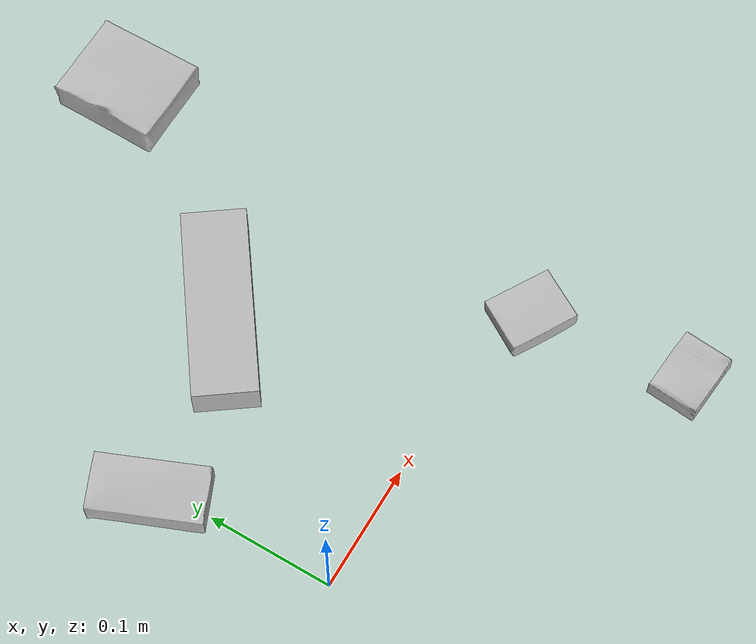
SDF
<sdf version="1.4">
  <world name="default">
    <light name="light1" type="point">
      <pose>0 0 1 0 0 0</pose>
      <diffuse>3 3 3 1</diffuse>
      <specular>3 3 3 1</specular>
    </light>
    <light name="light2" type="point">
      <pose>0 0.5 2 0 0 0</pose>
      <diffuse>1 1 1 1</diffuse>
      <specular>1 1 1 1</specular>
    </light>
    <light name="light3" type="point">
      <pose>0 0.5 2 0 0 0</pose>
      <diffuse>3 3 3 1</diffuse>
      <specular>3 3 3 1</specular>
    </light>
    <scene>
      <ambient>0.7 0.7 0.7</ambient>
    </scene>
    <model name="box1">
      <link name="link_box1">
        <collision name="default">
          <geometry>
            <mesh>
              <uri>model://sugar_box/collision_meshes/collision.obj</uri>
              <scale>0.5 0.5 0.5</scale>
            </mesh>
          </geometry>
          <surface>
            <friction>
              <ode>
                <mu>0.5</mu>
                <mu2>0.5</mu2>
              </ode>
            </friction>
          <contact>
        <ode>
            <max_vel>0</max_vel>
            <min_depth>0.0001</min_depth>
            <kp>1e8</kp>
        </ode>
    </contact></surface>
        </collision>
        <visual name="default">
          <geometry>
            <mesh>
              <uri>model://sugar_box/visual_meshes/visual.dae</uri>
              <scale>0.5 0.5 0.5</scale>
            </mesh>
          </geometry>
        </visual>
        <inertial>
          <mass>0.050072960555553436</mass>
          <pose>0.0005171863595023751 1.924554817378521e-05 -0.00018182402709499002 -0.0004046260967901466 0.0010506635218491861 0.0026153785561980193</pose>
          <inertia>
            <ixx>1.0430162e-05</ixx>
            <iyy>3.371243e-05</iyy>
            <izz>4.0357794e-05</izz>
            <ixy>0</ixy>
            <ixz>0</ixz>
            <iyz>0</iyz>
          </inertia>
        </inertial>
      </link>
      <pose>-0.009376129135489464 0.14541466534137726 0.011399301700294018 0.0007754669542380545 -0.023432563295730017 1.974162125345587</pose>
    </model>
    <model name="box2">
      <link name="link_box2">
        <collision name="default">
          <geometry>
            <mesh>
              <uri>model://pudding_box/collision_meshes/collision.obj</uri>
              <scale>0.5 0.5 0.5</scale>
            </mesh>
          </geometry>
          <surface>
            <friction>
              <ode>
                <mu>0.5</mu>
                <mu2>0.5</mu2>
              </ode>
            </friction>
          <contact>
        <ode>
            <max_vel>0</max_vel>
            <min_depth>0.0001</min_depth>
            <kp>1e8</kp>
        </ode>
    </contact></surface>
        </collision>
        <visual name="default">
          <geometry>
            <mesh>
              <uri>model://pudding_box/visual_meshes/visual.dae</uri>
              <scale>0.5 0.5 0.5</scale>
            </mesh>
          </geometry>
        </visual>
        <inertial>
          <mass>0.026034390553832054</mass>
          <pose>0.00024474109522998333 0.00040339428232982755 -0.0002594413817860186 0.005213101355963405 -0.006603798228586091 0.020079817710543634</pose>
          <inertia>
            <ixx>7.3576343e-06</ixx>
            <iyy>4.9502682e-06</iyy>
            <izz>1.086547e-05</izz>
            <ixy>0</ixy>
            <ixz>0</ixz>
            <iyz>0</iyz>
          </inertia>
        </inertial>
      </link>
      <pose>0.2555670738220215 -0.02064838632941246 0.00986290629953146 0.022348125382872536 -0.011392048126796202 -2.1130264451454424</pose>
    </model>
    <model name="box3">
      <link name="link_box3">
        <collision name="default">
          <geometry>
            <mesh>
              <uri>model://jenga/collision_meshes/collision.obj</uri>
              <scale>1.0 1.0 1.0</scale>
            </mesh>
          </geometry>
          <surface>
            <friction>
              <ode>
                <mu>0.5</mu>
                <mu2>0.5</mu2>
              </ode>
            </friction>
          <contact>
        <ode>
            <max_vel>0</max_vel>
            <min_depth>0.0001</min_depth>
            <kp>1e8</kp>
        </ode>
    </contact></surface>
        </collision>
        <visual name="default">
          <geometry>
            <mesh>
              <uri>model://jenga/visual_meshes/visual.dae</uri>
              <scale>1.0 1.0 1.0</scale>
            </mesh>
          </geometry>
        </visual>
        <inertial>
          <mass>0.2076648771762848</mass>
          <pose>-2.502856091268768e-07 -0.00010250010382151231 -4.0923405322246253e-05 0.0 -7.34215461761844e-07 0.0</pose>
          <inertia>
            <ixx>5.746591e-05</ixx>
            <iyy>0.00038938745</iyy>
            <izz>0.0004157042</izz>
            <ixy>0</ixy>
            <ixz>0</ixz>
            <iyz>0</iyz>
          </inertia>
        </inertial>
      </link>
      <pose>0.13781747221946716 0.17879939079284668 0.015000002458691597 1.1383489535969564e-08 2.3764683378501756e-09 -2.5131048123449458</pose>
    </model>
    <model name="box4">
      <link name="link_box4">
        <collision name="default">
          <geometry>
            <mesh>
              <uri>model://gelatin_box/collision_meshes/collision.obj</uri>
              <scale>1.0 1.0 1.0</scale>
            </mesh>
          </geometry>
          <surface>
            <friction>
              <ode>
                <mu>0.5</mu>
                <mu2>0.5</mu2>
              </ode>
            </friction>
          <contact>
        <ode>
            <max_vel>0</max_vel>
            <min_depth>0.0001</min_depth>
            <kp>1e8</kp>
        </ode>
    </contact></surface>
        </collision>
        <visual name="default">
          <geometry>
            <mesh>
              <uri>model://gelatin_box/visual_meshes/visual.dae</uri>
              <scale>1.0 1.0 1.0</scale>
            </mesh>
          </geometry>
        </visual>
        <inertial>
          <mass>0.09577830880880356</mass>
          <pose>0.000431961816502735 0.00011156871187267825 -0.0003640321083366871 -0.0010503719862657887 -0.004755821487046037 0.01644055388468454</pose>
          <inertia>
            <ixx>6.761167e-05</ixx>
            <iyy>4.8294667e-05</iyy>
            <izz>0.00010292002</izz>
            <ixy>0</ixy>
            <ixz>0</ixz>
            <iyz>0</iyz>
          </inertia>
        </inertial>
      </link>
      <pose>0.2635677456855774 0.34529343247413635 0.01516831573098898 0.005597420835814365 -0.007304483429472507 3.128310581545742</pose>
    </model>
    <model name="box5">
      <link name="link_box5">
        <collision name="default">
          <geometry>
            <mesh>
              <uri>model://cracker_box/collision_meshes/collision.obj</uri>
              <scale>0.25 0.25 0.25</scale>
            </mesh>
          </geometry>
          <surface>
            <friction>
              <ode>
                <mu>0.5</mu>
                <mu2>0.5</mu2>
              </ode>
            </friction>
          <contact>
        <ode>
            <max_vel>0</max_vel>
            <min_depth>0.0001</min_depth>
            <kp>1e8</kp>
        </ode>
    </contact></surface>
        </collision>
        <visual name="default">
          <geometry>
            <mesh>
              <uri>model://cracker_box/visual_meshes/visual.dae</uri>
              <scale>0.25 0.25 0.25</scale>
            </mesh>
          </geometry>
        </visual>
        <inertial>
          <mass>0.019404999911785126</mass>
          <pose>0.00023660343140363693 6.358561950037256e-05 -0.00042573839891701937 -0.00031620745436260704 -0.011106489600575076 0.0025467952338677235</pose>
          <inertia>
            <ixx>3.084854e-06</ixx>
            <iyy>5.093699e-06</iyy>
            <izz>7.269177e-06</izz>
            <ixy>0</ixy>
            <ixz>0</ixz>
            <iyz>0</iyz>
          </inertia>
        </inertial>
      </link>
      <pose>0.2716451585292816 -0.14613312482833862 0.009096028283238411 -0.014050419917614644 -0.005016607960173312 3.05859717378515</pose>
    </model>
  <physics type="ode">
      <max_contacts>50</max_contacts>
      <ode>
        <solver>
          <type>quick</type>
          <iters>75</iters>
        </solver>
        <constraints>
          <contact_max_correcting_vel>0</contact_max_correcting_vel>
          <contact_surface_layer>0</contact_surface_layer>
        </constraints>
      </ode>
    </physics></world>
</sdf>
